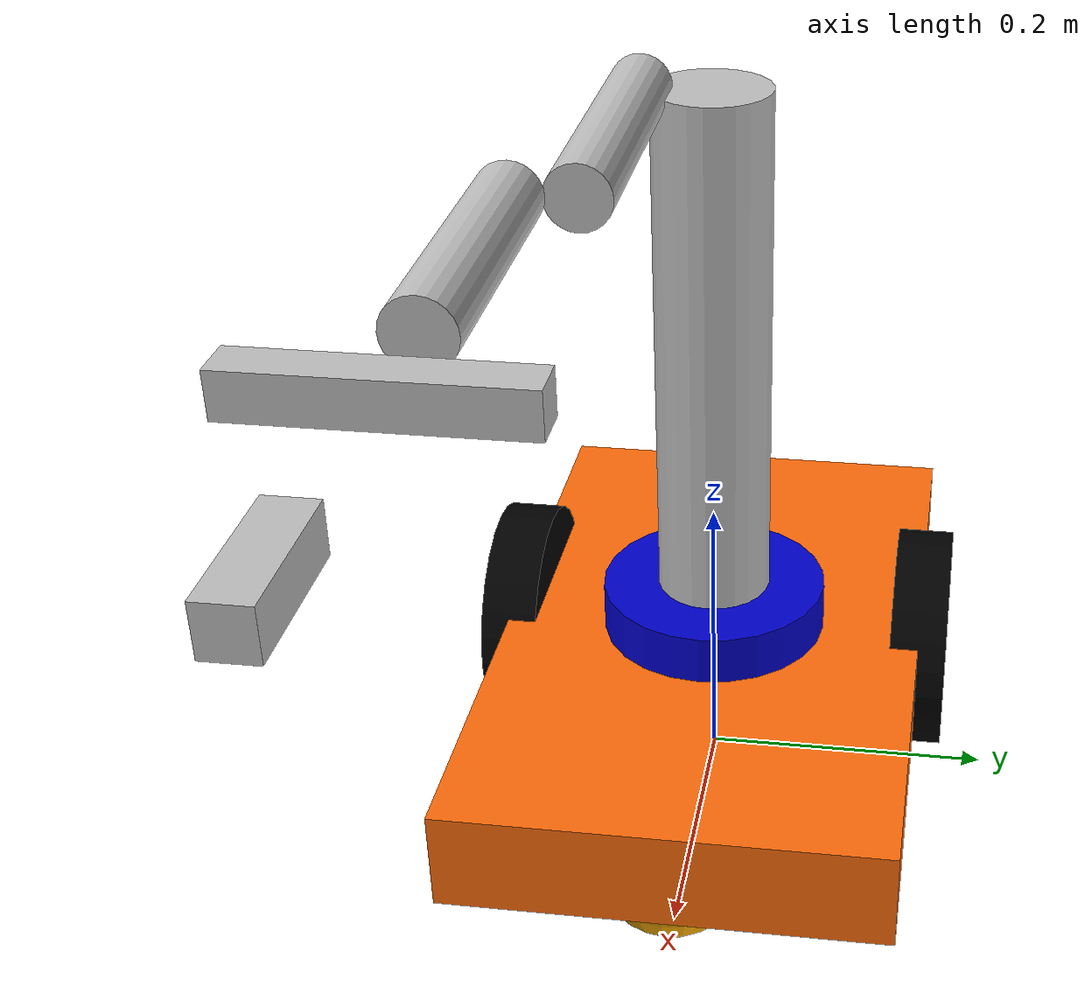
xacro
<?xml version="1.0" ?>
<robot name="iai_student_robot" xmlns:xacro="http://www.ros.org/wiki/xacro">
    <material name="black">
        <color rgba="0.0 0.0 0.0 1.0"/>
    </material>
    <material name="blue">
        <color rgba="0 0 0.8 1"/>
    </material>
    <material name="green">
        <color rgba="0.0 0.8 0.0 1.0"/>
    </material>
    <material name="grey">
        <color rgba="0.2 0.2 0.2 1.0"/>
    </material>
    <material name="orange">
        <color rgba="1.0 0.423529411765 0.0392156862745 1.0"/>
    </material>
    <material name="brown">
        <color rgba="0.870588235294 0.811764705882 0.764705882353 1.0"/>
    </material>
    <material name="red">
        <color rgba="0.80078125 0.12890625 0.1328125 1.0"/>
    </material>
    <material name="white">
        <color rgba="1.0 1.0 1.0 1.0"/>
    </material>

    <xacro:property name="wheel_radius" value="0.08"/>
    <xacro:property name="pi" value="3.14"/>
    <xacro:property name="chassis_box_height" value="0.07"/>
    <xacro:property name="platform_cylinder_length" value="0.05"/>
    <xacro:property name="arm_cylinder_length" value="0.18"/>

    <link name="base_link">
        <!-- chassis box -->
        <visual>
            <origin rpy="0 0 0" xyz="0 0 ${chassis_box_height/2 + wheel_radius/2}"/>
            <geometry>
                <box size="0.5 0.3 ${chassis_box_height}"/>
            </geometry>
            <material name="orange"/>
        </visual>

        <!-- caster front -->
        <visual name="caster_front_visual">
            <origin rpy=" 0 0 0" xyz="0.2 0 0.05"/>
            <geometry>
                <sphere radius="0.05"/>
            </geometry>
        </visual>
    </link>

    <link name="right_wheel_link">
        <visual>
            <origin rpy="0 1.5707 1.5707" xyz="0 0 0"/>
            <geometry>
                <cylinder length="0.04" radius="${wheel_radius}"/>
            </geometry>
            <material name="black"/>
        </visual>
    </link>

    <joint name="right_wheel_joint" type="continuous">
        <origin rpy="0 0 0" xyz="-0.05 0.15 ${chassis_box_height/2 + wheel_radius/2}"/>
        <child link="right_wheel_link"/>
        <parent link="base_link"/>
        <axis rpy="0 0 0" xyz="0 1 0"/>
        <limit effort="10000" velocity="10"/>
        <joint_properties damping="1.0" friction="1.0"/>
    </joint>

    <link name="left_wheel_link">
        <visual>
            <origin rpy="0 1.5707 1.5707" xyz="0 0 0"/>
            <geometry>
                <cylinder length="0.04" radius="${wheel_radius}"/>
            </geometry>
            <material name="black"/>
        </visual>
    </link>

    <joint name="left_wheel_joint" type="continuous">
        <origin rpy="0 0 0" xyz="-0.05 -0.15 ${chassis_box_height/2 + wheel_radius/2}"/>
        <child link="left_wheel_link"/>
        <parent link="base_link"/>
        <axis rpy="0 0 0" xyz="0 1 0"/>
        <limit effort="10000" velocity="10"/>
        <joint_properties damping="1.0" friction="1.0"/>
    </joint>

    <link name="platform_link">
        <visual>
            <origin rpy="0 0 0" xyz="0 0 ${platform_cylinder_length/2 + chassis_box_height/2}"/>
            <geometry>
                <cylinder length="${platform_cylinder_length}" radius="0.08"/>
            </geometry>
            <material name="blue"/>
        </visual>
    </link>

    <joint name="platform_joint" type="fixed">
        <origin rpy="0 0 0" xyz="0 0 ${platform_cylinder_length/2 + chassis_box_height/2}"/>
        <child link="platform_link"/>
        <parent link="base_link"/>
    </joint>
    <link name="torso">
        <visual>
            <geometry>
                <cylinder length="0.4" radius="0.04"/>
            </geometry>
            <material name="silver">
                <color rgba="0.75 0.75 0.75 1"/>
            </material>
            <origin rpy="0 0 0" xyz="0 0 0.25"/>
        </visual>
    </link>

    <joint name="hip" type="continuous">
        <axis xyz="0 0 1"/>
        <parent link="platform_link"/>
        <child link="torso"/>
        <origin rpy="0 0 0" xyz="0.0 0.0 0.000"/>
    </joint>

    <link name="upper_arm">
        <visual>
            <geometry>
                <cylinder length="0.2" radius="0.02"/>
            </geometry>
            <material name="silver"/>
            <origin rpy="0 0 0" xyz="0 0 0.1"/>
        </visual>
    </link>

    <joint name="shoulder" type="continuous">
        <axis xyz="0 1 0"/>
        <parent link="torso"/>
        <child link="upper_arm"/>
        <origin rpy="0 1.5708 0" xyz="0.0 -0.045 0.45"/>
    </joint>

    <link name="lower_arm">
        <visual>
            <geometry>
                <cylinder length="0.18" radius="0.02"/>
            </geometry>
            <material name="silver"/>
            <origin rpy="0 0 0" xyz="0.0 0.0 0.1"/>
        </visual>
    </link>

    <joint name="elbow" type="continuous">
        <axis xyz="0 1 0"/>
        <parent link="upper_arm"/>
        <child link="lower_arm"/>
        <origin rpy="0 0 0" xyz="0.0 -0.038 0.19"/>
    </joint>

    <link name="gripper_base_link">
        <visual>
            <geometry>
                <box size="0.025 0.025 0.075"/>
            </geometry>
            <material name="silver"/>
        </visual>
    </link>

    <joint name="gripper_wrist" type="continuous">
        <axis xyz="0 1 0"/>
        <parent link="lower_arm"/>
        <child link="gripper_base_link"/>
        <origin rpy="0 0 0" xyz="0.0 0.0 0.40"/>
    </joint>

    <link name="gripper_horizontal_link">
        <visual>
            <geometry>
                <box size="0.025 0.15 0.025"/>
            </geometry>
            <material name="silver"/>
        </visual>
    </link>

    <joint name="hand_joint" type="continuous">
        <axis xyz="0 1 0"/>
        <parent link="lower_arm"/>
        <child link="gripper_horizontal_link"/>
        <origin rpy="0 0 0" xyz="0.0 0.0 0.25"/>
    </joint>
</robot>
